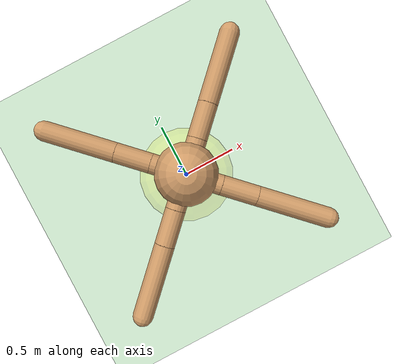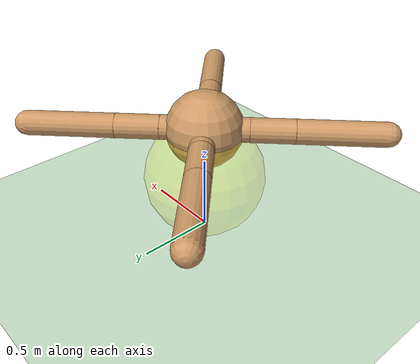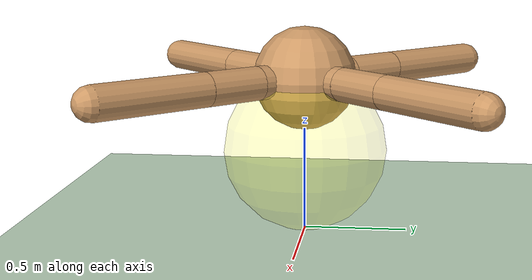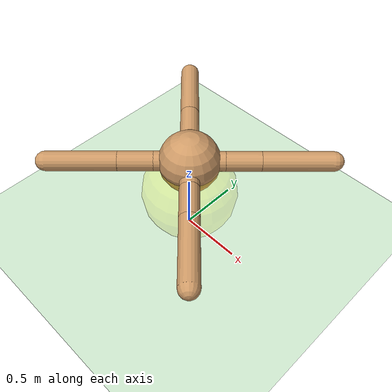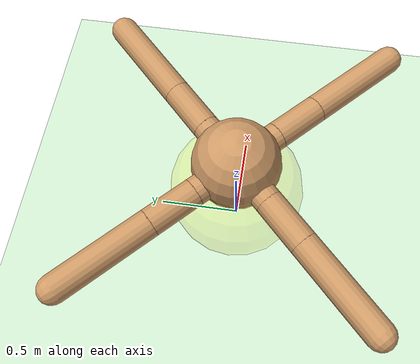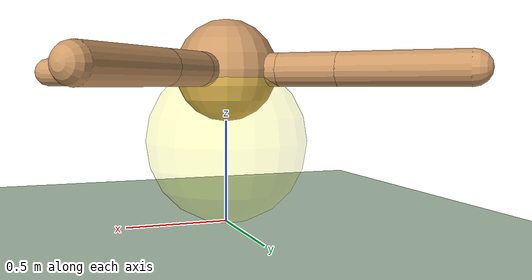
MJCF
<mujoco model="ant">
    <compiler inertiafromgeom="true" angle="degree" coordinate="local"/>
    <option timestep="0.02" integrator="RK4"/>
    <custom>
        <numeric name="init_qpos" data="0.0 0.0 0.55 1.0 0.0 0.0 0.0 0.0 1.0 0.0 -1.0 0.0 -1.0 0.0 1.0"/>
    </custom>
    <default>
        <joint limited="true" armature="1" damping="1"/>
        <geom condim="3" conaffinity="0" margin="0.01" friction="1 0.5 0.5" solref=".02 1" solimp=".8 .8 .01"
              rgba="0.8 0.6 0.4 1" density="5.0"/>
    </default>
    <asset>
        <texture type="skybox" builtin="gradient" width="100" height="100" rgb1="1 1 1" rgb2="0 0 0"/>
        <texture name="texgeom" type="cube" builtin="flat" mark="cross" width="127" height="1278" rgb1="0.8 0.6 0.4"
                 rgb2="0.8 0.6 0.4" markrgb="1 1 1" random="0.01"/>
        <texture name="texplane" type="2d" builtin="checker" rgb1="0 0 0" rgb2="0.8 0.8 0.8" width="100" height="100"/>
        <material name='MatPlane' texture="texplane" shininess="1" texrepeat="60 60" specular="1" reflectance="0.5"/>
        <material name='geom' texture="texgeom" texuniform="true"/>
    </asset>
    <worldbody>
        <include file="subgoal_viz.xml"/>
        <light directional="true" cutoff="100" exponent="1" diffuse="1 1 1" specular=".1 .1 .1" pos="0 0 1.3"
               dir="-0 0 -1.3"/>
        <geom name='floor' pos='0 0 0' size='40 40 40' type='plane' conaffinity='1' rgba='0.8 0.9 0.8 1' condim='3'/>
        <body name="torso" pos="0 0 0.75">
            <geom name="torso_geom" type="sphere" size="0.25" pos="0 0 0"/>
            <joint name="root" type="free" limited="false" pos="0 0 0" axis="0 0 1" margin="0.01" armature="0"
                   damping="0"/>
            <body name="front_left_leg" pos="0 0 0">
                <geom name="aux_1_geom" type="capsule" size="0.08" fromto="0.0 0.0 0.0 0.2 0.2 0.0"/>
                <body name="aux_1" pos="0.2 0.2 0">
                    <joint name="hip_1" type="hinge" pos="0.0 0.0 0.0" axis="0 0 1" range="-30 30"/>
                    <geom name="left_leg_geom" type="capsule" size="0.08" fromto="0.0 0.0 0.0 0.2 0.2 0.0"/>
                    <body pos="0.2 0.2 0">
                        <joint name="ankle_1" type="hinge" pos="0.0 0.0 0.0" axis="-1 1 0" range="30 70"/>
                        <geom name="left_ankle_geom" type="capsule" size="0.08" fromto="0.0 0.0 0.0 0.4 0.4 0.0"/>
                    </body>
                </body>
            </body>
            <body name="front_right_leg" pos="0 0 0">
                <geom name="aux_2_geom" type="capsule" size="0.08" fromto="0.0 0.0 0.0 -0.2 0.2 0.0"/>
                <body name="aux_2" pos="-0.2 0.2 0">
                    <joint name="hip_2" type="hinge" pos="0.0 0.0 0.0" axis="0 0 1" range="-30 30"/>
                    <geom name="right_leg_geom" type="capsule" size="0.08" fromto="0.0 0.0 0.0 -0.2 0.2 0.0"/>
                    <body pos="-0.2 0.2 0">
                        <joint name="ankle_2" type="hinge" pos="0.0 0.0 0.0" axis="1 1 0" range="-70 -30"/>
                        <geom name="right_ankle_geom" type="capsule" size="0.08" fromto="0.0 0.0 0.0 -0.4 0.4 0.0"/>
                    </body>
                </body>
            </body>
            <body name="back_leg" pos="0 0 0">
                <geom name="aux_3_geom" type="capsule" size="0.08" fromto="0.0 0.0 0.0 -0.2 -0.2 0.0"/>
                <body name="aux_3" pos="-0.2 -0.2 0">
                    <joint name="hip_3" type="hinge" pos="0.0 0.0 0.0" axis="0 0 1" range="-30 30"/>
                    <geom name="back_leg_geom" type="capsule" size="0.08" fromto="0.0 0.0 0.0 -0.2 -0.2 0.0"/>
                    <body pos="-0.2 -0.2 0">
                        <joint name="ankle_3" type="hinge" pos="0.0 0.0 0.0" axis="-1 1 0" range="-70 -30"/>
                        <geom name="third_ankle_geom" type="capsule" size="0.08" fromto="0.0 0.0 0.0 -0.4 -0.4 0.0"/>
                    </body>
                </body>
            </body>
            <body name="right_back_leg" pos="0 0 0">
                <geom name="aux_4_geom" type="capsule" size="0.08" fromto="0.0 0.0 0.0 0.2 -0.2 0.0"/>
                <body name="aux_4" pos="0.2 -0.2 0">
                    <joint name="hip_4" type="hinge" pos="0.0 0.0 0.0" axis="0 0 1" range="-30 30"/>
                    <geom name="rightback_leg_geom" type="capsule" size="0.08" fromto="0.0 0.0 0.0 0.2 -0.2 0.0"/>
                    <body pos="0.2 -0.2 0">
                        <joint name="ankle_4" type="hinge" pos="0.0 0.0 0.0" axis="1 1 0" range="30 70"/>
                        <geom name="fourth_ankle_geom" type="capsule" size="0.08" fromto="0.0 0.0 0.0 0.4 -0.4 0.0"/>
                    </body>
                </body>
            </body>
        </body>

        <!-- Create goal and subgoal visualizations -->
        <body>
            <site pos="0 0 0.4" name="goal" type="sphere" size="0.4 0.4 0.4" rgba="1 1 0 0.1"/>
        </body>

    </worldbody>
    <actuator>
        <motor joint="hip_4" ctrlrange="-30.0 30.0" ctrllimited="true"/>
        <motor joint="ankle_4" ctrlrange="-30.0 30.0" ctrllimited="true"/>
        <motor joint="hip_1" ctrlrange="-30.0 30.0" ctrllimited="true"/>
        <motor joint="ankle_1" ctrlrange="-30.0 30.0" ctrllimited="true"/>
        <motor joint="hip_2" ctrlrange="-30.0 30.0" ctrllimited="true"/>
        <motor joint="ankle_2" ctrlrange="-30.0 30.0" ctrllimited="true"/>
        <motor joint="hip_3" ctrlrange="-30.0 30.0" ctrllimited="true"/>
        <motor joint="ankle_3" ctrlrange="-30.0 30.0" ctrllimited="true"/>
    </actuator>
</mujoco>

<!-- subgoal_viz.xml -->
<mujoco>
    <body>
        <site name="subgoal_sphere0" pos="0 0 7" size="0.025 0.025 0.025" rgba="1 0 0 0" type="sphere"/>
        <site name="subgoal_sphere1" pos="0 0 7" size="0.025 0.025 0.025" rgba="0 1 0 0" type="sphere"/>
        <site name="subgoal_sphere2" pos="0 0 7" size="0.025 0.025 0.025" rgba="0 0 1 0" type="sphere"/>
        <site name="subgoal_sphere3" pos="0 0 7" size="0.025 0.025 0.025" rgba="1 1 0 0" type="sphere"/>
        <site name="subgoal_sphere4" pos="0 0 7" size="0.025 0.025 0.025" rgba="1 0 1 0" type="sphere"/>
        <site name="subgoal_sphere5" pos="0 0 7" size="0.025 0.025 0.025" rgba="0 1 1 0" type="sphere"/>
        <site name="subgoal_sphere6" pos="0 0 7" size="0.025 0.025 0.025" rgba="1 0.5 0 0" type="sphere"/>
        <site name="subgoal_sphere7" pos="0 0 7" size="0.025 0.025 0.025" rgba="1 0 0.5 0" type="sphere"/>
        <site name="subgoal_sphere8" pos="0 0 7" size="0.025 0.025 0.025" rgba="0.5 1 0.5 0" type="sphere"/>
        <site name="subgoal_sphere9" pos="0 0 7" size="0.025 0.025 0.025" rgba="0 0.5 1 0" type="sphere"/>

        <site name="subgoal_box0" pos="0 0 7" size="0.025 0.025 0.025" rgba="1 0 0 0" type="box"/>
        <site name="subgoal_box1" pos="0 0 7" size="0.025 0.025 0.025" rgba="0 1 0 0" type="box"/>
        <site name="subgoal_box2" pos="0 0 7" size="0.025 0.025 0.025" rgba="0 0 1 0" type="box"/>
        <site name="subgoal_box3" pos="0 0 7" size="0.025 0.025 0.025" rgba="1 1 0 0" type="box"/>
        <site name="subgoal_box4" pos="0 0 7" size="0.025 0.025 0.025" rgba="1 0 1 0" type="box"/>
        <site name="subgoal_box5" pos="0 0 7" size="0.025 0.025 0.025" rgba="0 1 1 0" type="box"/>
        <site name="subgoal_box6" pos="0 0 7" size="0.025 0.025 0.025" rgba="1 0.5 0 0" type="box"/>
        <site name="subgoal_box7" pos="0 0 7" size="0.025 0.025 0.025" rgba="1 0 0.5 0" type="box"/>
        <site name="subgoal_box8" pos="0 0 7" size="0.025 0.025 0.025" rgba="0.5 1 0.5 0" type="box"/>
        <site name="subgoal_box9" pos="0 0 7" size="0.025 0.025 0.025" rgba="0 0.5 1 0" type="box"/>

        <site name="subgoal_cylinder0" pos="0 0 7" size="0.025 0.025 0.025" rgba="1 0 0 0" type="cylinder"/>
        <site name="subgoal_cylinder1" pos="0 0 7" size="0.025 0.025 0.025" rgba="0 1 0 0" type="cylinder"/>
        <site name="subgoal_cylinder2" pos="0 0 7" size="0.025 0.025 0.025" rgba="0 0 1 0" type="cylinder"/>
        <site name="subgoal_cylinder3" pos="0 0 7" size="0.025 0.025 0.025" rgba="1 1 0 0" type="cylinder"/>
        <site name="subgoal_cylinder4" pos="0 0 7" size="0.025 0.025 0.025" rgba="1 0 1 0" type="cylinder"/>
        <site name="subgoal_cylinder5" pos="0 0 7" size="0.025 0.025 0.025" rgba="0 1 1 0" type="cylinder"/>
        <site name="subgoal_cylinder6" pos="0 0 7" size="0.025 0.025 0.025" rgba="1 0.5 0 0" type="cylinder"/>
        <site name="subgoal_cylinder7" pos="0 0 7" size="0.025 0.025 0.025" rgba="1 0 0.5 0" type="cylinder"/>
        <site name="subgoal_cylinder8" pos="0 0 7" size="0.025 0.025 0.025" rgba="0.5 1 0.5 0" type="cylinder"/>
        <site name="subgoal_cylinder9" pos="0 0 7" size="0.025 0.025 0.025" rgba="0 0.5 1 0" type="cylinder"/>
    </body>
</mujoco>
